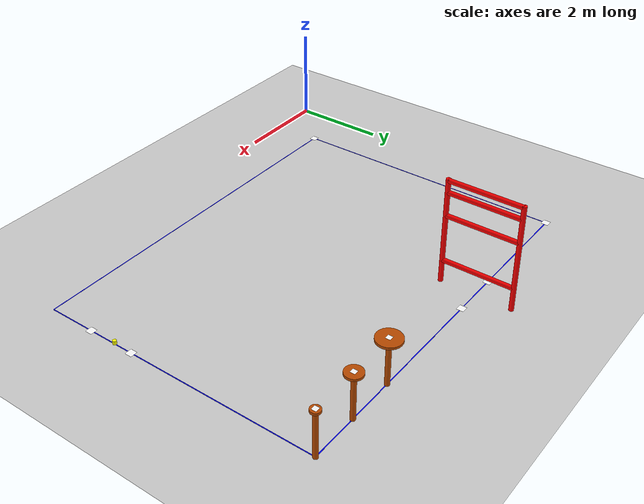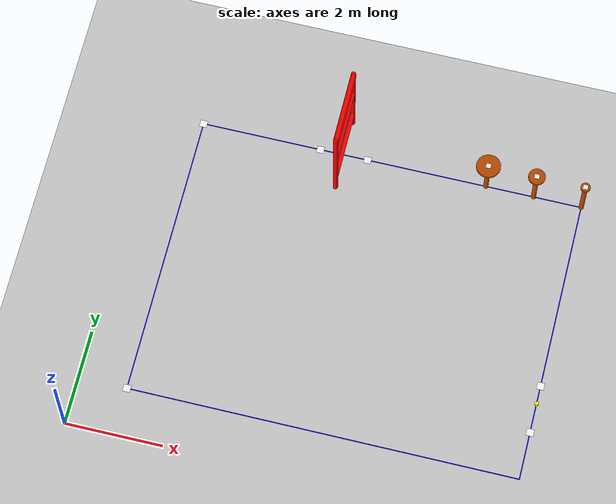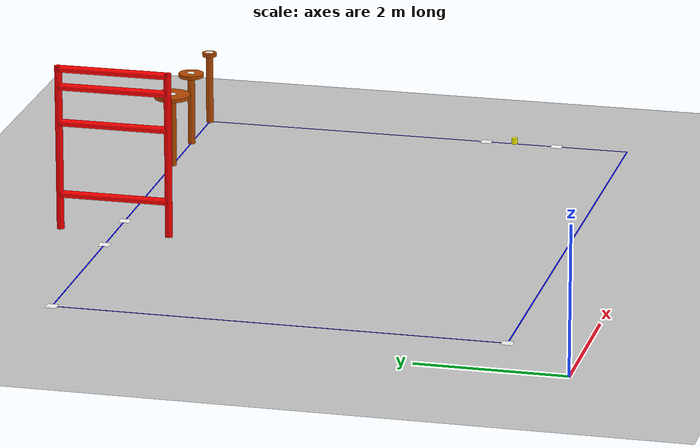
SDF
<?xml version="1.0" encoding="UTF-8"?>
<sdf version='1.9'>
  <world name='default'>

    <physics type="ode">
      <max_step_size>0.004</max_step_size>
      <real_time_factor>1.0</real_time_factor>
      <real_time_update_rate>250</real_time_update_rate>
    </physics>

    <plugin name='gz::sim::systems::Physics' filename='gz-sim-physics-system'/>
    <plugin name='gz::sim::systems::UserCommands' filename='gz-sim-user-commands-system'/>
    <plugin name='gz::sim::systems::SceneBroadcaster' filename='gz-sim-scene-broadcaster-system'/>
    <plugin name='gz::sim::systems::Contact' filename='gz-sim-contact-system'/>
    <plugin name='gz::sim::systems::Imu' filename='gz-sim-imu-system'/>
    <plugin name='gz::sim::systems::AirPressure' filename='gz-sim-air-pressure-system'/>
    <plugin name='gz::sim::systems::Sensors' filename='gz-sim-sensors-system'>
      <render_engine>ogre2</render_engine>
    </plugin>

    <gui fullscreen='false'>
      <plugin name='3D View' filename='GzScene3D'>
        <gz-gui>
          <title>3D View</title>
          <property type='bool' key='showTitleBar'>0</property>
          <property type='string' key='state'>docked</property>
        </gz-gui>
        <engine>ogre2</engine>
        <scene>scene</scene>
        <ambient_light>0.5984631152222222 0.5984631152222222 0.5984631152222222</ambient_light>
        <background_color>0.8984631152222222 0.8984631152222222 0.8984631152222222</background_color>
        <camera_pose>-6 0 6 0 0.5 0</camera_pose>
      </plugin>
      <plugin name='World control' filename='WorldControl'>
        <gz-gui>
          <title>World control</title>
          <property type='bool' key='showTitleBar'>0</property>
          <property type='bool' key='resizable'>0</property>
          <property type='double' key='height'>72</property>
          <property type='double' key='width'>121</property>
          <property type='double' key='z'>1</property>
          <property type='string' key='state'>floating</property>
          <anchors target='3D View'>
            <line own='left' target='left'/>
            <line own='bottom' target='bottom'/>
          </anchors>
        </gz-gui>
        <play_pause>1</play_pause>
        <step>1</step>
        <start_paused>1</start_paused>
      </plugin>
      <plugin name='World stats' filename='WorldStats'>
        <gz-gui>
          <title>World stats</title>
          <property type='bool' key='showTitleBar'>0</property>
          <property type='bool' key='resizable'>0</property>
          <property type='double' key='height'>110</property>
          <property type='double' key='width'>290</property>
          <property type='double' key='z'>1</property>
          <property type='string' key='state'>floating</property>
          <anchors target='3D View'>
            <line own='right' target='right'/>
            <line own='bottom' target='bottom'/>
          </anchors>
        </gz-gui>
        <sim_time>1</sim_time>
        <real_time>1</real_time>
        <real_time_factor>1</real_time_factor>
        <iterations>1</iterations>
      </plugin>
      <plugin name='Entity tree' filename='EntityTree'/>
    </gui>

    <gravity>0 0 -9.8</gravity>
    <magnetic_field>6e-06 2.3e-05 -4.2e-05</magnetic_field>
    <atmosphere type='adiabatic'/>

    <scene>
      <grid>false</grid>
      <ambient>0.4 0.4 0.4 1</ambient>
      <background>0.7 0.7 0.7 1</background>
      <shadows>true</shadows>
    </scene>

    <model name='ground_plane'>
      <static>true</static>
      <link name='link'>
        <collision name='collision'>
          <geometry>
            <plane>
              <normal>0 0 1</normal>
              <size>1 1</size>
            </plane>
          </geometry>
          <surface>
            <friction>
              <ode/>
            </friction>
            <bounce/>
            <contact/>
          </surface>
        </collision>
        <visual name='visual'>
          <geometry>
            <plane>
              <normal>0 0 1</normal>
              <size>100 100</size>
            </plane>
          </geometry>
          <material>
            <ambient>0.8 0.8 0.8 1</ambient>
            <diffuse>0.8 0.8 0.8 1</diffuse>
            <specular>0.8 0.8 0.8 1</specular>
          </material>
        </visual>
        <pose>0 0 0 0 -0 0</pose>
        <inertial>
          <pose>0 0 0 0 -0 0</pose>
          <mass>1</mass>
          <inertia>
            <ixx>1</ixx>
            <ixy>0</ixy>
            <ixz>0</ixz>
            <iyy>1</iyy>
            <iyz>0</iyz>
            <izz>1</izz>
          </inertia>
        </inertial>
        <enable_wind>false</enable_wind>
      </link>
      <pose>0 0 0 0 -0 0</pose>
      <self_collide>false</self_collide>
    </model>

    <light name='sunUTC' type='directional'>
      <pose>0 0 500 0 -0 0</pose>
      <cast_shadows>true</cast_shadows>
      <intensity>1</intensity>
      <direction>0.001 0.625 -0.78</direction>
      <diffuse>0.904 0.904 0.904 1</diffuse>
      <specular>0.271 0.271 0.271 1</specular>
      <attenuation>
        <range>2000</range>
        <linear>0</linear>
        <constant>1</constant>
        <quadratic>0</quadratic>
      </attenuation>
      <spot>
        <inner_angle>0</inner_angle>
        <outer_angle>0</outer_angle>
        <falloff>0</falloff>
      </spot>
    </light>

    <model name='aruco100'>
    <static>true</static>
    <pose> 1 1 0.01 0 0 0 </pose>
    <link name='base_aruco100'>
      <visual name='visual'>
        <geometry>
          <plane>
            <normal>0 0 1</normal>
            <size>0.15 0.15</size>
          </plane>
        </geometry>
        <material>
          <diffuse>1 1 1 1</diffuse>
          <specular>0.4 0.4 0.4 1</specular>
          <pbr>
            <metal>
              <albedo_map>model://images/5x5_1000-100.png</albedo_map>
            </metal>
          </pbr>
        </material>
      </visual>
    </link>
  </model>

  <model name='aruco105'>
    <static>true</static>
    <pose> 1 7 0.01 0 0 0 </pose>
    <link name='base_aruco105'>
      <visual name='visual'>
        <geometry>
          <plane>
            <normal>0 0 1</normal>
            <size>0.15 0.15</size>
          </plane>
        </geometry>
        <material>
          <diffuse>1 1 1 1</diffuse>
          <specular>0.4 0.4 0.4 1</specular>
          <pbr>
            <metal>
              <albedo_map>model://images/5x5_1000-105.png</albedo_map>
            </metal>
          </pbr>
        </material>
      </visual>
    </link>
  </model>

  <model name='aruco200'>
    <static>true</static>
    <pose> 3.5 7 0.01 0 0 0 </pose>
    <link name='base_aruco200'>
      <visual name='visual'>
        <geometry>
          <plane>
            <normal>0 0 1</normal>
            <size>0.15 0.15</size>
          </plane>
        </geometry>
        <material>
          <diffuse>1 1 1 1</diffuse>
          <specular>0.4 0.4 0.4 1</specular>
          <pbr>
            <metal>
              <albedo_map>model://images/5x5_1000-200.png</albedo_map>
            </metal>
          </pbr>
        </material>
      </visual>
    </link>
  </model>

  <model name='aruco205'>
    <static>true</static>
    <pose> 4.5 7 0.01 0 0 0 </pose>
    <link name='base_aruco205'>
      <visual name='visual'>
        <geometry>
          <plane>
            <normal>0 0 1</normal>
            <size>0.15 0.15</size>
          </plane>
        </geometry>
        <material>
          <diffuse>1 1 1 1</diffuse>
          <specular>0.4 0.4 0.4 1</specular>
          <pbr>
            <metal>
              <albedo_map>model://images/5x5_1000-205.png</albedo_map>
            </metal>
          </pbr>
        </material>
      </visual>
    </link>
  </model>

  <model name='aruco400'>
    <static>true</static>
    <pose> 9 3 0.01 0 0 0 </pose>
    <link name='base_aruco400'>
      <visual name='visual'>
        <geometry>
          <plane>
            <normal>0 0 1</normal>
            <size>0.15 0.15</size>
          </plane>
        </geometry>
        <material>
          <diffuse>1 1 1 1</diffuse>
          <specular>0.4 0.4 0.4 1</specular>
          <pbr>
            <metal>
              <albedo_map>model://images/5x5_1000-400.png</albedo_map>
            </metal>
          </pbr>
        </material>
      </visual>
    </link>
  </model>

  <model name='aruco405'>
    <static>true</static>
    <pose> 9 2 0.01 0 0 0 </pose>
    <link name='base_aruco405'>
      <visual name='visual'>
        <geometry>
          <plane>
            <normal>0 0 1</normal>
            <size>0.15 0.15</size>
          </plane>
        </geometry>
        <material>
          <diffuse>1 1 1 1</diffuse>
          <specular>0.4 0.4 0.4 1</specular>
          <pbr>
            <metal>
              <albedo_map>model://images/5x5_1000-405.png</albedo_map>
            </metal>
          </pbr>
        </material>
      </visual>
    </link>
  </model>

  <model name="blue_line">
    <static>true</static>

    <link name="left_edge">
      <pose>1 4 0.007 0 0 1.57079</pose>
      <visual name="visual">
        <geometry>
          <box>
            <size>6 0.019 0.001</size>
          </box>
        </geometry>
        <material>
          <diffuse>0 0 1 1</diffuse>
        </material>
      </visual>
    </link>

    <link name="top_edge">
      <pose>5 7 0.007 0 0 0</pose>
      <visual name="visual">
        <geometry>
          <box>
            <size>8 0.019 0.001</size>
          </box>
        </geometry>
        <material>
          <diffuse>0 0 1 1</diffuse>
        </material>
      </visual>
    </link>

    <link name="right_edge">
      <pose>9 4 0.007 0 0 1.57079</pose>
      <visual name="visual">
        <geometry>
          <box>
            <size>6 0.019 0.001</size>
          </box>
        </geometry>
        <material>
          <diffuse>0 0 1 1</diffuse>
        </material>
      </visual>
    </link>

    <link name="bottom_edge">
      <pose>5 1 0.007 0 0 0</pose>
      <visual name="visual">
        <geometry>
          <box>
            <size>8 0.019 0.001</size>
          </box>
        </geometry>
        <material>
          <diffuse>0 0 1 1</diffuse>
        </material>
      </visual>
    </link>
  </model>

  <model name="landing_platform1">
    <static>true</static>

    <link name="base">
      <pose>7 7 0.5 0 0 0</pose>
      <visual name="base_visual">
        <geometry>
          <cylinder>
            <radius>0.05</radius>
            <length>1.0</length>
          </cylinder>
        </geometry>
        <material>
          <diffuse>0.729 0.290 0 1</diffuse>
        </material>
      </visual>
      <collision name="base_hitbox">
        <geometry>
          <cylinder>
            <radius>0.05</radius>
            <length>1.0</length>
          </cylinder>
        </geometry>
      </collision>
    </link>

    <link name="top">
      <pose relative_to="base">0 0 0.5 0 0 0</pose>
      <visual name="top_visual">
        <geometry>
          <cylinder>
            <radius>0.25</radius>
            <length>0.05</length>
          </cylinder>
        </geometry>
        <material>
          <diffuse>0.729 0.290 0 1</diffuse>
        </material>
      </visual>
      <collision name="top_hitbox">
        <geometry>
          <cylinder>
            <radius>0.25</radius>
            <length>0.05</length>
          </cylinder>
        </geometry>
      </collision>
    </link>

    <link name='base_aruco300'>
      <pose relative_to="base">0 0 0.53 0 0 0</pose>
      <visual name='visual'>
        <geometry>
          <plane>
            <normal>0 0 1</normal>
            <size>0.10 0.10</size>
          </plane>
        </geometry>
        <material>
          <diffuse>1 1 1 1</diffuse>
          <specular>0.4 0.4 0.4 1</specular>
          <pbr>
            <metal>
              <albedo_map>model://images/5x5_1000-300.png</albedo_map>
            </metal>
          </pbr>
        </material>
      </visual>
    </link>
  </model>

  <model name="landing_platform2">
    <static>true</static>

    <link name="base">
      <pose>8 7 0.5 0 0 0</pose>
      <visual name="base_visual">
        <geometry>
          <cylinder>
            <radius>0.05</radius>
            <length>1.0</length>
          </cylinder>
        </geometry>
        <material>
          <diffuse>0.729 0.290 0 1</diffuse>
        </material>
      </visual>
      <collision name="base_hitbox">
        <geometry>
          <cylinder>
            <radius>0.05</radius>
            <length>1.0</length>
          </cylinder>
        </geometry>
      </collision>
    </link>

    <link name="top">
      <pose relative_to="base">0 0 0.5 0 0 0</pose>
      <visual name="top_visual">
        <geometry>
          <cylinder>
            <radius>0.175</radius>
            <length>0.05</length>
          </cylinder>
        </geometry>
        <material>
          <diffuse>0.729 0.290 0 1</diffuse>
        </material>
      </visual>
      <collision name="top_hitbox">
        <geometry>
          <cylinder>
            <radius>0.175</radius>
            <length>0.05</length>
          </cylinder>
        </geometry>
      </collision>
    </link>

    <link name='base_aruco301'>
      <pose relative_to="base">0 0 0.53 0 0 0</pose>
      <visual name='visual'>
        <geometry>
          <plane>
            <normal>0 0 1</normal>
            <size>0.10 0.10</size>
          </plane>
        </geometry>
        <material>
          <diffuse>1 1 1 1</diffuse>
          <specular>0.4 0.4 0.4 1</specular>
          <pbr>
            <metal>
              <albedo_map>model://images/5x5_1000-301.png</albedo_map>
            </metal>
          </pbr>
        </material>
      </visual>
    </link>
  </model>

  <model name="landing_platform3">
    <static>true</static>

    <link name="base">
      <pose>9 7 0.5 0 0 0</pose>
      <visual name="base_visual">
        <geometry>
          <cylinder>
            <radius>0.05</radius>
            <length>1.0</length>
          </cylinder>
        </geometry>
        <material>
          <diffuse>0.729 0.290 0 1</diffuse>
        </material>
      </visual>
      <collision name="base_hitbox">
        <geometry>
          <cylinder>
            <radius>0.05</radius>
            <length>1.0</length>
          </cylinder>
        </geometry>
      </collision>
    </link>

    <link name="top">
      <pose relative_to="base">0 0 0.5 0 0 0</pose>
      <visual name="top_visual">
        <geometry>
          <cylinder>
            <radius>0.1</radius>
            <length>0.05</length>
          </cylinder>
        </geometry>
        <material>
          <diffuse>0.729 0.290 0 1</diffuse>
        </material>
      </visual>
      <collision name="top_hitbox">
        <geometry>
          <cylinder>
            <radius>0.1</radius>
            <length>0.05</length>
          </cylinder>
        </geometry>
      </collision>
    </link>

    <link name='base_aruco302'>
      <pose relative_to="base">0 0 0.53 0 0 0</pose>
      <visual name='visual'>
        <geometry>
          <plane>
            <normal>0 0 1</normal>
            <size>0.10 0.10</size>
          </plane>
        </geometry>
        <material>
          <diffuse>1 1 1 1</diffuse>
          <specular>0.4 0.4 0.4 1</specular>
          <pbr>
            <metal>
              <albedo_map>model://images/5x5_1000-302.png</albedo_map>
            </metal>
          </pbr>
        </material>
      </visual>
    </link>
  </model>

  <model name="ventana">
    <static>true</static>

    <link name="base">
      <pose>4 7 1.5 1.57079 0 0</pose>
      <visual name="100cm_up_bar">
        <geometry>
          <cylinder>
            <radius>0.05</radius>
            <length>1.5</length>
          </cylinder>
        </geometry>
        <material>
          <diffuse>1 0 0 1</diffuse>
        </material>
      </visual>
      <collision name="100cm_up_bar_hitbox">
        <geometry>
          <cylinder>
            <radius>0.05</radius>
            <length>1.5</length>
          </cylinder>
        </geometry>
      </collision>
    </link>

    <link name="horizontalbar1">
      <pose relative_to="base">0 0.5 0 0 0 0</pose>
      <visual name="50cm_up_bar">
        <geometry>
          <cylinder>
            <radius>0.05</radius>
            <length>1.5</length>
          </cylinder>
        </geometry>
        <material>
          <diffuse>1 0 0 1</diffuse>
        </material>
      </visual>
      <collision name="50cm_up_bar_hitbox">
        <geometry>
          <cylinder>
            <radius>0.05</radius>
            <length>1.5</length>
          </cylinder>
        </geometry>
      </collision>
    </link>

    <link name="horizontalbar2">
      <pose relative_to="base">0 0.75 0 0 0 0</pose>
      <visual name="25cm_up_bar">
        <geometry>
          <cylinder>
            <radius>0.05</radius>
            <length>1.5</length>
          </cylinder>
        </geometry>
        <material>
          <diffuse>1 0 0 1</diffuse>
        </material>
      </visual>
      <collision name="25cm_up_bar_hitbox">
        <geometry>
          <cylinder>
            <radius>0.05</radius>
            <length>1.5</length>
          </cylinder>
        </geometry>
      </collision>
    </link>

    <link name="horizontalbar3">
      <pose relative_to="base">0 -1 0 0 0 0</pose>
      <visual name="25cm_up_bar">
        <geometry>
          <cylinder>
            <radius>0.05</radius>
            <length>1.5</length>
          </cylinder>
        </geometry>
        <material>
          <diffuse>1 0 0 1</diffuse>
        </material>
      </visual>
      <collision name="25cm_up_bar_hitbox">
        <geometry>
          <cylinder>
            <radius>0.05</radius>
            <length>1.5</length>
          </cylinder>
        </geometry>
      </collision>
    </link>

    <link name="rightbar">
      <pose relative_to="base">0 -0.35 0.75 1.57079 0 0</pose>
      <visual name="right_bar">
        <geometry>
          <cylinder>
            <radius>0.05</radius>
            <length>2.275</length>
          </cylinder>
        </geometry>
        <material>
          <diffuse>1 0 0 1</diffuse>
        </material>
      </visual>
      <collision name="right_bar_hitbox">
        <geometry>
          <cylinder>
            <radius>0.05</radius>
            <length>2.25</length>
          </cylinder>
        </geometry>
      </collision>
    </link>

    <link name="leftbar">
      <pose relative_to="base">0 -0.35 -0.75 1.57079 0 0</pose>
      <visual name="left_bar">
        <geometry>
          <cylinder>
            <radius>0.05</radius>
            <length>2.275</length>
          </cylinder>
        </geometry>
        <material>
          <diffuse>1 0 0 1</diffuse>
        </material>
      </visual>
      <collision name="left_bar_hitbox">
        <geometry>
          <cylinder>
            <radius>0.05</radius>
            <length>2.25</length>
          </cylinder>
        </geometry>
      </collision>
    </link>

  </model>

  <model name="cone">
    <pose>9 2.6 0.05 0 0 0</pose>
    <link name="base">
      <visual name="cone_visual">
        <geometry>
          <cylinder>
            <radius>0.04</radius>
            <length>0.08</length>
          </cylinder>
        </geometry>
        <material>
          <diffuse>1 1 0 1</diffuse>
        </material>
      </visual>
      <collision name="cone_hitbox">
        <geometry>
          <cylinder>
            <radius>0.04</radius>
            <length>0.08</length>
          </cylinder>
        </geometry>
      </collision>
    </link>
  </model>

  </world>
</sdf>
